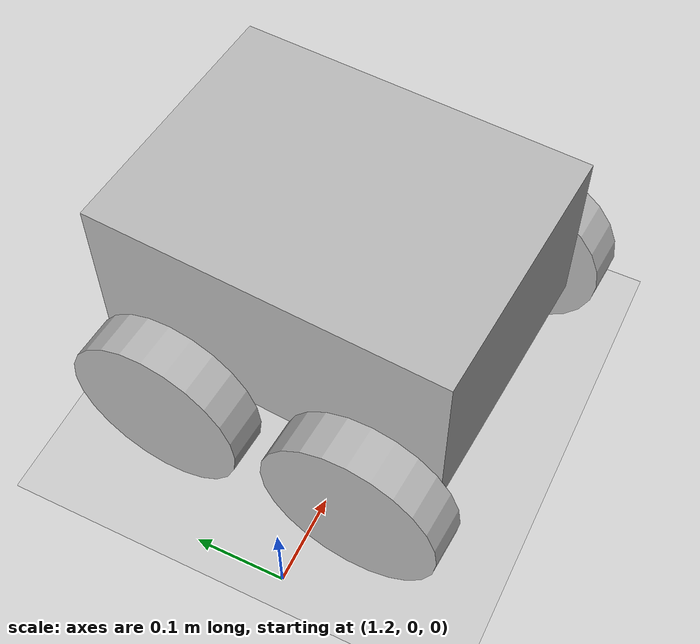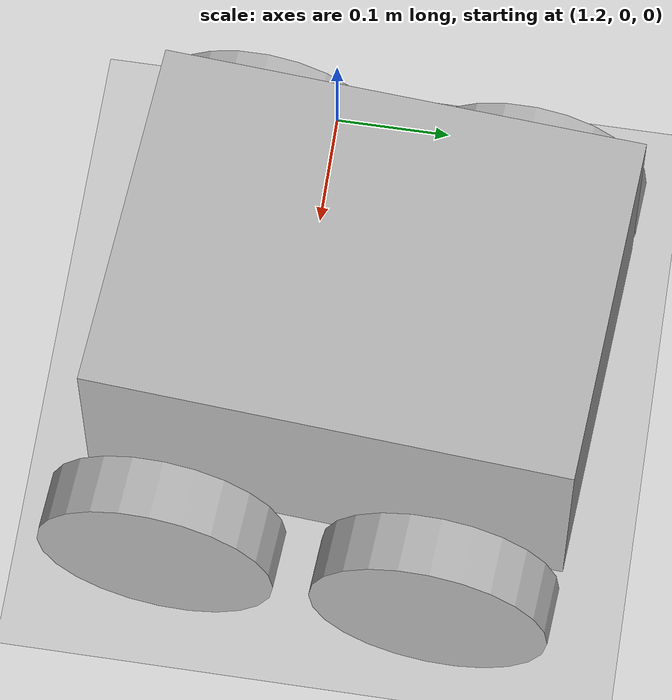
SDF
<sdf version="1.7">
 <world name="default">
  <light name="sun" type="directional">
   <pose>0 0 10 0 -0 0</pose>
   <diffuse>0.8 0.8 0.8 1</diffuse>
   <specular>0.2 0.2 0.2 1</specular>
   <attenuation>
    <range>1000</range>
    <constant>0.9</constant>
    <linear>0.01</linear>
    <quadratic>0.001</quadratic>
   </attenuation>
   <direction>-0.5 0.1 -0.9</direction>
   <spot><inner_angle>0</inner_angle><outer_angle>0</outer_angle><falloff>0</falloff></spot>
  </light>
  <model name="ground_plane">
   <static>1</static>
   <link name="link">
    <collision name="collision">
     <geometry><plane><normal>0 0 1</normal><size>100 100</size></plane></geometry>
     <surface>
      <contact><collide_bitmask>65535</collide_bitmask></contact>
      <friction><ode><mu>100</mu><mu2>50</mu2></ode></friction>
     </surface>
    </collision>
    <visual name="visual">
     <cast_shadows>0</cast_shadows>
     <geometry><plane><normal>0 0 1</normal><size>100 100</size></plane></geometry>
     <material>
      <script><uri>file://media/materials/scripts/gazebo.material</uri><name>Gazebo/Grey</name></script>
     </material>
    </visual>
   </link>
  </model>
  <gravity>0 0 -9.8</gravity>
  <magnetic_field>6e-06 2.3e-05 -4.2e-05</magnetic_field>
  <atmosphere type="adiabatic"/>
  <physics type="ode">
   <max_step_size>0.001</max_step_size>
   <real_time_factor>1</real_time_factor>
   <real_time_update_rate>1000</real_time_update_rate>
  </physics>
  <scene><ambient>0.4 0.4 0.4 1</ambient><background>0.7 0.7 0.7 1</background><shadows>1</shadows></scene>
  <audio><device>default</device></audio>
  <spherical_coordinates>
   <surface_model>EARTH_WGS84</surface_model>
   <latitude_deg>0</latitude_deg>
   <longitude_deg>0</longitude_deg>
   <elevation>0</elevation>
   <heading_deg>0</heading_deg>
  </spherical_coordinates>
  <model name="my_bot">
   <link name="base_link">
    <inertial>
     <pose>0.1 0 0.1 0 -0 0</pose>
     <mass>0.5</mass>
     <inertia>
      <ixx>0.00541667</ixx>
      <ixy>0</ixy>
      <ixz>0</ixz>
      <iyy>0.00833333</iyy>
      <iyz>0</iyz>
      <izz>0.0104167</izz>
     </inertia>
    </inertial>
    <collision name="base_link_fixed_joint_lump__chassis_collision">
     <pose>0.1 0 0.1 0 -0 0</pose>
     <geometry><box><size>0.4 0.3 0.2</size></box></geometry>
    </collision>
    <visual name="base_link_fixed_joint_lump__chassis_visual">
     <pose>0.1 0 0.1 0 -0 0</pose>
     <geometry><box><size>0.4 0.3 0.2</size></box></geometry>
    </visual>
   </link>
   <joint name="front_left_wheel_joint" type="revolute">
    <pose relative_to="base_link">0.23 0.19 0 1.5708 -0 0</pose>
    <parent>base_link</parent>
    <child>front_left_wheel</child>
    <axis>
     <xyz>0 0 1</xyz>
     <limit><lower>-1e+16</lower><upper>1e+16</upper></limit>
     <dynamics><spring_reference>0</spring_reference><spring_stiffness>0</spring_stiffness></dynamics>
    </axis>
   </joint>
   <link name="front_left_wheel">
    <pose relative_to="front_left_wheel_joint">0 0 0 0 -0 0</pose>
    <inertial>
     <mass>0.2</mass>
     <inertia>
      <ixx>0.000541667</ixx>
      <ixy>0</ixy>
      <ixz>0</ixz>
      <iyy>0.000541667</iyy>
      <iyz>0</iyz>
      <izz>0.001</izz>
     </inertia>
    </inertial>
    <collision name="front_left_wheel_collision">
     <geometry><cylinder><length>0.05</length><radius>0.1</radius></cylinder></geometry>
    </collision>
    <visual name="front_left_wheel_visual">
     <geometry><cylinder><length>0.05</length><radius>0.1</radius></cylinder></geometry>
    </visual>
   </link>
   <joint name="front_right_wheel_joint" type="revolute">
    <pose relative_to="base_link">0.23 -0.19 0 1.5708 -0 0</pose>
    <parent>base_link</parent>
    <child>front_right_wheel</child>
    <axis>
     <xyz>0 0 -1</xyz>
     <limit><lower>-1e+16</lower><upper>1e+16</upper></limit>
     <dynamics><spring_reference>0</spring_reference><spring_stiffness>0</spring_stiffness></dynamics>
    </axis>
   </joint>
   <link name="front_right_wheel">
    <pose relative_to="front_right_wheel_joint">0 0 0 0 -0 0</pose>
    <inertial>
     <mass>0.2</mass>
     <inertia>
      <ixx>0.000541667</ixx>
      <ixy>0</ixy>
      <ixz>0</ixz>
      <iyy>0.000541667</iyy>
      <iyz>0</iyz>
      <izz>0.001</izz>
     </inertia>
    </inertial>
    <collision name="front_right_wheel_collision">
     <geometry><cylinder><length>0.05</length><radius>0.1</radius></cylinder></geometry>
    </collision>
    <visual name="front_right_wheel_visual">
     <geometry><cylinder><length>0.05</length><radius>0.1</radius></cylinder></geometry>
    </visual>
   </link>
   <joint name="rear_left_wheel_joint" type="revolute">
    <pose relative_to="base_link">0 0.19 0 1.5708 -0 0</pose>
    <parent>base_link</parent>
    <child>rear_left_wheel</child>
    <axis>
     <xyz>0 0 1</xyz>
     <limit><lower>-1e+16</lower><upper>1e+16</upper></limit>
     <dynamics><spring_reference>0</spring_reference><spring_stiffness>0</spring_stiffness></dynamics>
    </axis>
   </joint>
   <link name="rear_left_wheel">
    <pose relative_to="rear_left_wheel_joint">0 0 0 0 -0 0</pose>
    <inertial>
     <mass>0.2</mass>
     <inertia>
      <ixx>0.000541667</ixx>
      <ixy>0</ixy>
      <ixz>0</ixz>
      <iyy>0.000541667</iyy>
      <iyz>0</iyz>
      <izz>0.001</izz>
     </inertia>
    </inertial>
    <collision name="rear_left_wheel_collision">
     <geometry><cylinder><length>0.05</length><radius>0.1</radius></cylinder></geometry>
    </collision>
    <visual name="rear_left_wheel_visual">
     <geometry><cylinder><length>0.05</length><radius>0.1</radius></cylinder></geometry>
    </visual>
   </link>
   <joint name="rear_right_wheel_joint" type="revolute">
    <pose relative_to="base_link">0 -0.19 0 1.5708 -0 0</pose>
    <parent>base_link</parent>
    <child>rear_right_wheel</child>
    <axis>
     <xyz>0 0 -1</xyz>
     <limit><lower>-1e+16</lower><upper>1e+16</upper></limit>
     <dynamics><spring_reference>0</spring_reference><spring_stiffness>0</spring_stiffness></dynamics>
    </axis>
   </joint>
   <link name="rear_right_wheel">
    <pose relative_to="rear_right_wheel_joint">0 0 0 0 -0 0</pose>
    <inertial>
     <mass>0.2</mass>
     <inertia>
      <ixx>0.000541667</ixx>
      <ixy>0</ixy>
      <ixz>0</ixz>
      <iyy>0.000541667</iyy>
      <iyz>0</iyz>
      <izz>0.001</izz>
     </inertia>
    </inertial>
    <collision name="rear_right_wheel_collision">
     <geometry><cylinder><length>0.05</length><radius>0.1</radius></cylinder></geometry>
    </collision>
    <visual name="rear_right_wheel_visual">
     <geometry><cylinder><length>0.05</length><radius>0.1</radius></cylinder></geometry>
    </visual>
   </link>
   <static>0</static>
   <plugin name="diff_drive_back" filename="libgazebo_ros_diff_drive.so">
    <left_joint>rear_left_wheel_joint</left_joint>
    <right_joint>rear_right_wheel_joint</right_joint>
    <wheel_separation>0.38</wheel_separation>
    <wheel_diameter>0.2</wheel_diameter>
    <max_wheel_torque>200</max_wheel_torque>
    <max_wheel_acceleration>10.0</max_wheel_acceleration>
    <odometry_frame>odom</odometry_frame>
    <robot_base_frame>base_link</robot_base_frame>
    <publish_odom>1</publish_odom>
    <publish_odom_tf>1</publish_odom_tf>
    <publish_wheel_tf>1</publish_wheel_tf>
   </plugin>
   <plugin name="diff_drive_front" filename="libgazebo_ros_diff_drive.so">
    <left_joint>front_left_wheel_joint</left_joint>
    <right_joint>front_right_wheel_joint</right_joint>
    <wheel_separation>0.38</wheel_separation>
    <wheel_diameter>0.2</wheel_diameter>
    <max_wheel_torque>200</max_wheel_torque>
    <max_wheel_acceleration>10.0</max_wheel_acceleration>
    <odometry_frame>odom</odometry_frame>
    <robot_base_frame>base_link</robot_base_frame>
    <publish_odom>1</publish_odom>
    <publish_odom_tf>1</publish_odom_tf>
    <publish_wheel_tf>1</publish_wheel_tf>
   </plugin>
   <pose>1.4779 0.164569 0.1 -1e-06 -0 -1.63759</pose>
  </model>
 </world>
</sdf>
